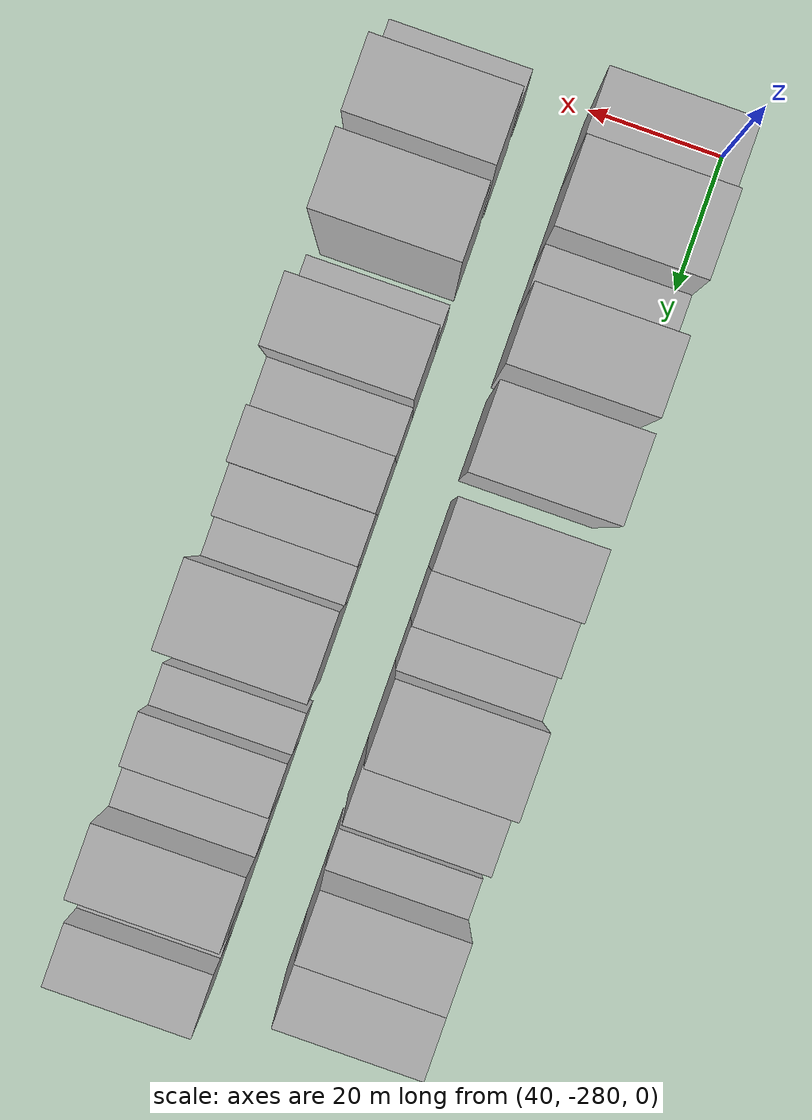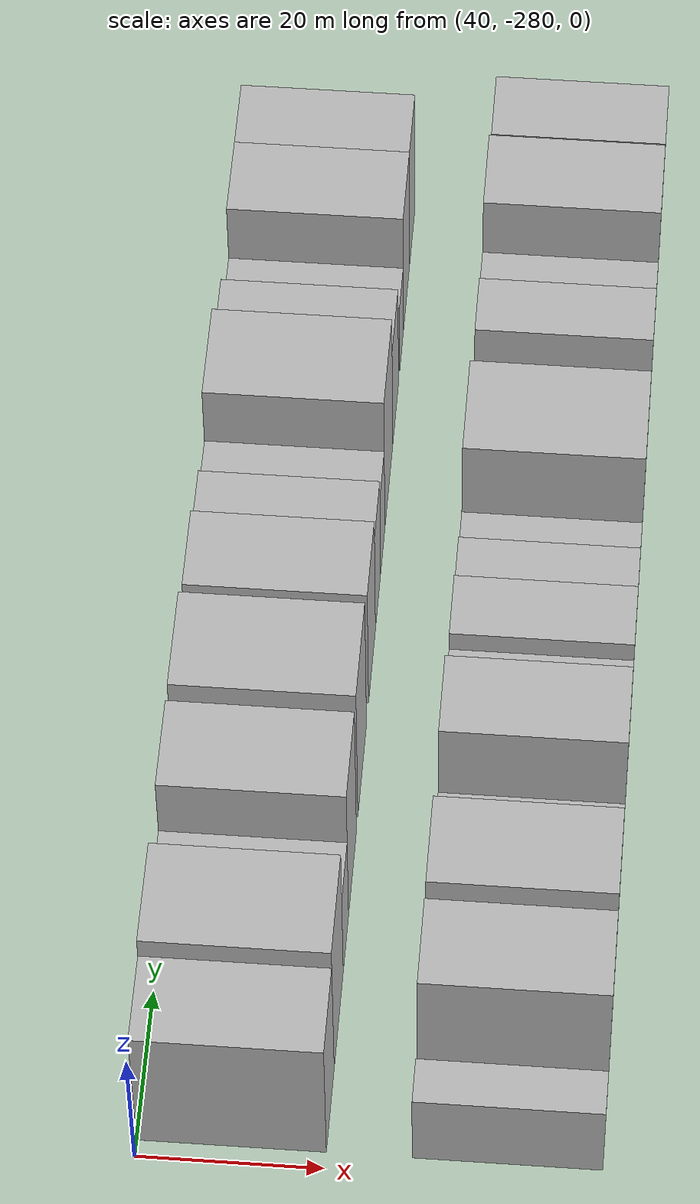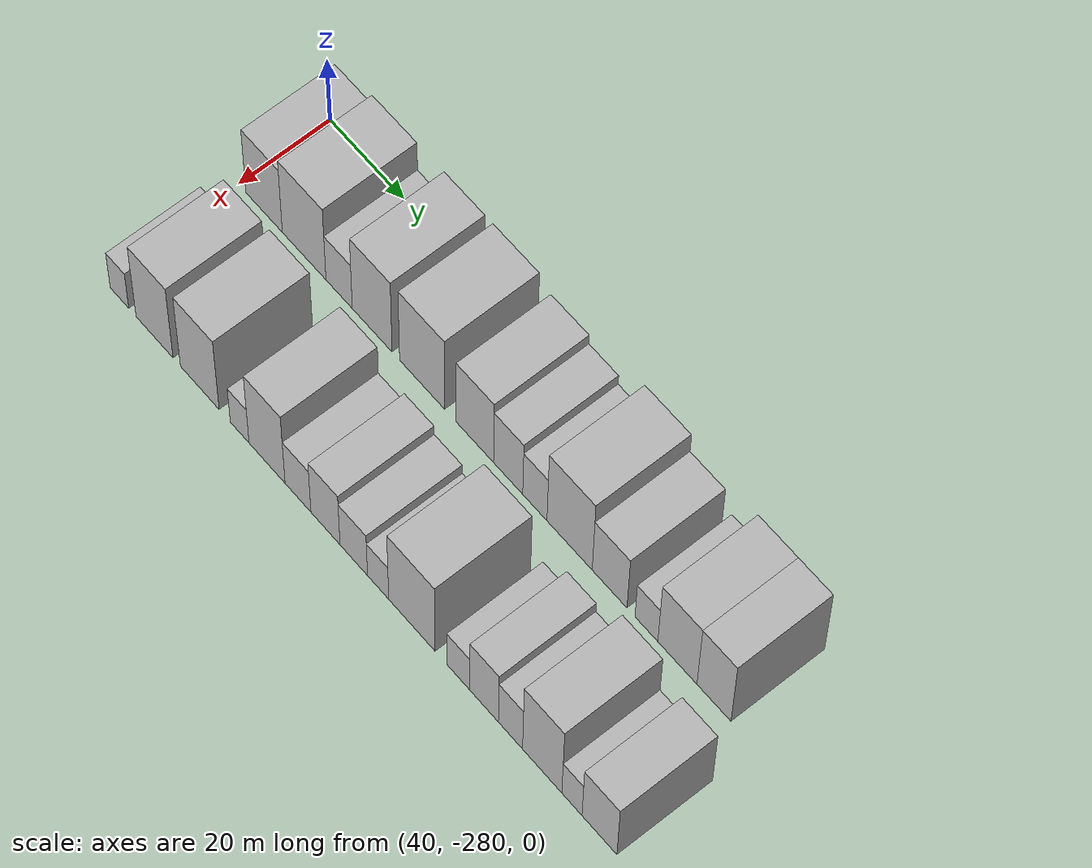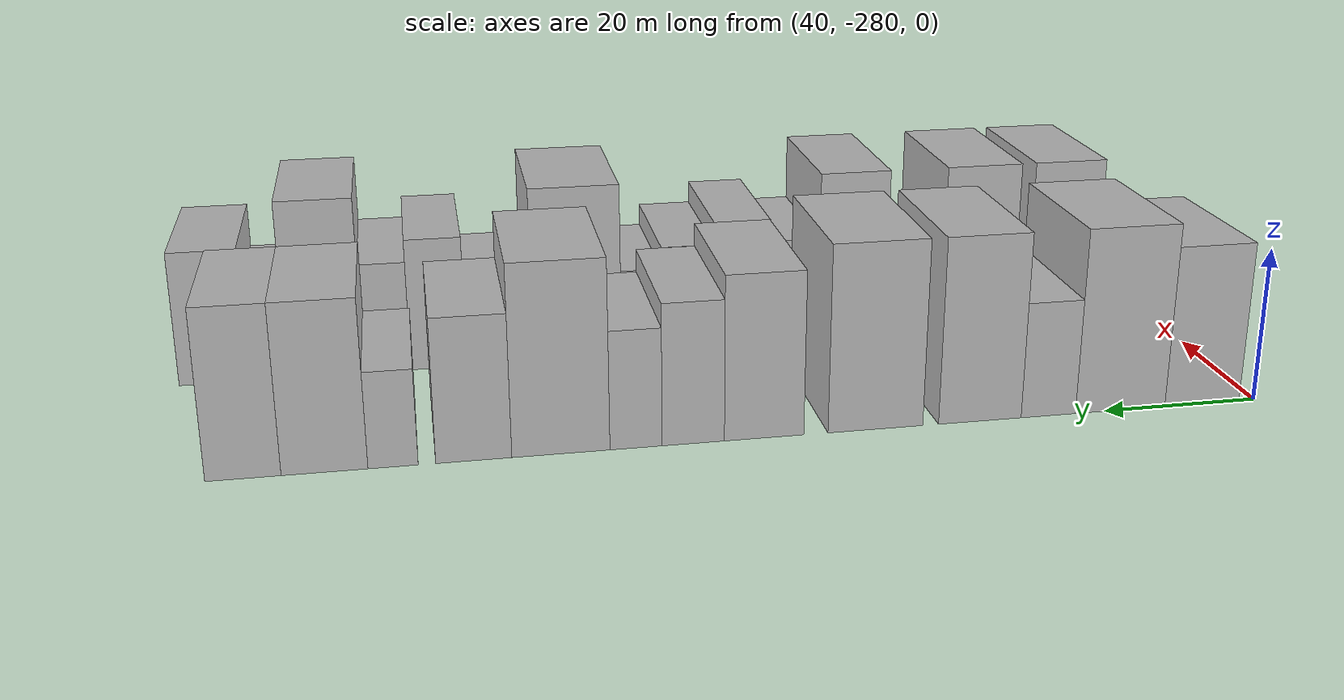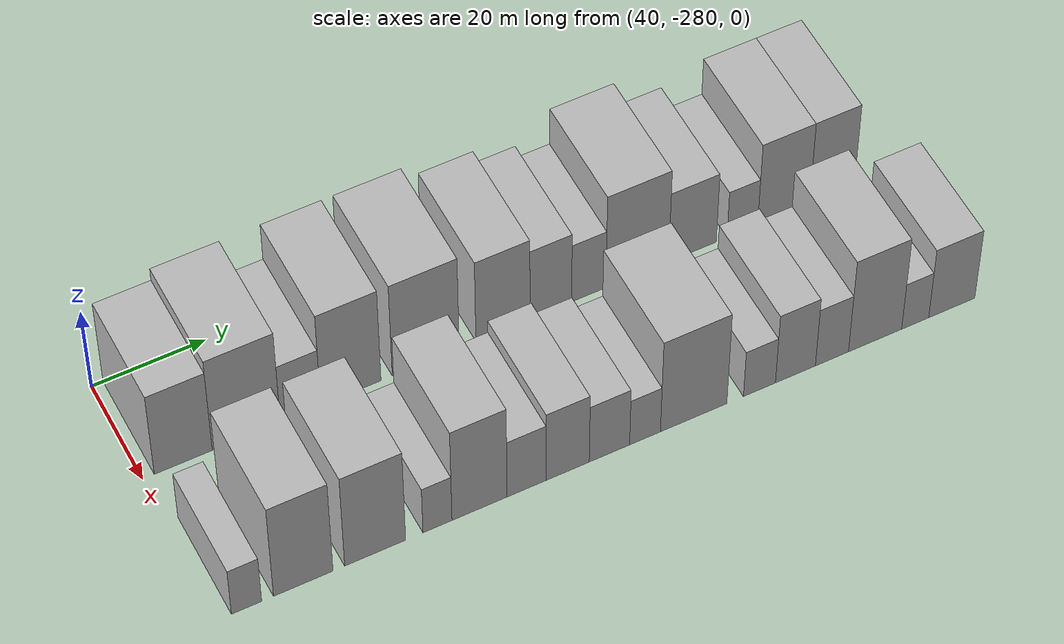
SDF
<sdf version="1.6">
 <world name="default">
  <model name="building_1">
   <static>1</static>
   <pose>50.0000 -272.9973 0 0.000000 0.000000 0.000000</pose>
   <link name="link">
    <pose>0 0 10.50 0 0 0</pose>
    <collision name="collision"><geometry><box><size>20.0000 10.0054 21.0000</size></box></geometry></collision>
    <visual name="visual">
     <cast_shadows>0</cast_shadows>
     <geometry><box><size>20.0000 10.0054 21.0000</size></box></geometry>
     <material>
      <script>
       <uri>model://HANNAS_wall/materials/scripts</uri>
       <uri>model://HANNAS_wall/materials/textures</uri>
       <name>vrc/HANNAS_wall</name>
      </script>
     </material>
    </visual>
   </link>
  </model>
  <model name="building_2">
   <static>1</static>
   <pose>50.0000 -262.0783 0 0.000000 0.000000 0.000000</pose>
   <link name="link">
    <pose>0 0 12.00 0 0 0</pose>
    <collision name="collision"><geometry><box><size>20.0000 11.8327 24.0000</size></box></geometry></collision>
    <visual name="visual">
     <cast_shadows>0</cast_shadows>
     <geometry><box><size>20.0000 11.8327 24.0000</size></box></geometry>
     <material>
      <script>
       <uri>model://HANNAS_wall/materials/scripts</uri>
       <uri>model://HANNAS_wall/materials/textures</uri>
       <name>vrc/HANNAS_wall</name>
      </script>
     </material>
    </visual>
   </link>
  </model>
  <model name="building_3">
   <static>1</static>
   <pose>50.0000 -252.6162 0 0.000000 0.000000 0.000000</pose>
   <link name="link">
    <pose>0 0 7.50 0 0 0</pose>
    <collision name="collision"><geometry><box><size>20.0000 7.0915 15.0000</size></box></geometry></collision>
    <visual name="visual">
     <cast_shadows>0</cast_shadows>
     <geometry><box><size>20.0000 7.0915 15.0000</size></box></geometry>
     <material>
      <script>
       <uri>model://HANNAS_wall/materials/scripts</uri>
       <uri>model://HANNAS_wall/materials/textures</uri>
       <name>vrc/HANNAS_wall</name>
      </script>
     </material>
    </visual>
   </link>
  </model>
  <model name="building_4">
   <static>1</static>
   <pose>50.0000 -243.7639 0 0.000000 0.000000 0.000000</pose>
   <link name="link">
    <pose>0 0 12.00 0 0 0</pose>
    <collision name="collision"><geometry><box><size>20.0000 10.6131 24.0000</size></box></geometry></collision>
    <visual name="visual">
     <cast_shadows>0</cast_shadows>
     <geometry><box><size>20.0000 10.6131 24.0000</size></box></geometry>
     <material>
      <script>
       <uri>model://HANNAS_wall/materials/scripts</uri>
       <uri>model://HANNAS_wall/materials/textures</uri>
       <name>vrc/HANNAS_wall</name>
      </script>
     </material>
    </visual>
   </link>
  </model>
  <model name="building_5">
   <static>1</static>
   <pose>50.0000 -230.4985 0 0.000000 0.000000 0.000000</pose>
   <link name="link">
    <pose>0 0 12.00 0 0 0</pose>
    <collision name="collision"><geometry><box><size>20.0000 11.9177 24.0000</size></box></geometry></collision>
    <visual name="visual">
     <cast_shadows>0</cast_shadows>
     <geometry><box><size>20.0000 11.9177 24.0000</size></box></geometry>
     <material>
      <script>
       <uri>model://HANNAS_wall/materials/scripts</uri>
       <uri>model://HANNAS_wall/materials/textures</uri>
       <name>vrc/HANNAS_wall</name>
      </script>
     </material>
    </visual>
   </link>
  </model>
  <model name="building_6">
   <static>1</static>
   <pose>50.0000 -216.6666 0 0.000000 0.000000 0.000000</pose>
   <link name="link">
    <pose>0 0 10.50 0 0 0</pose>
    <collision name="collision"><geometry><box><size>20.0000 9.7462 21.0000</size></box></geometry></collision>
    <visual name="visual">
     <cast_shadows>0</cast_shadows>
     <geometry><box><size>20.0000 9.7462 21.0000</size></box></geometry>
     <material>
      <script>
       <uri>model://HANNAS_wall/materials/scripts</uri>
       <uri>model://HANNAS_wall/materials/textures</uri>
       <name>vrc/HANNAS_wall</name>
      </script>
     </material>
    </visual>
   </link>
  </model>
  <model name="building_7">
   <static>1</static>
   <pose>50.0000 -208.0286 0 0.000000 0.000000 0.000000</pose>
   <link name="link">
    <pose>0 0 9.00 0 0 0</pose>
    <collision name="collision"><geometry><box><size>20.0000 7.5296 18.0000</size></box></geometry></collision>
    <visual name="visual">
     <cast_shadows>0</cast_shadows>
     <geometry><box><size>20.0000 7.5296 18.0000</size></box></geometry>
     <material>
      <script>
       <uri>model://HANNAS_wall/materials/scripts</uri>
       <uri>model://HANNAS_wall/materials/textures</uri>
       <name>vrc/HANNAS_wall</name>
      </script>
     </material>
    </visual>
   </link>
  </model>
  <model name="building_8">
   <static>1</static>
   <pose>50.0000 -201.1453 0 0.000000 0.000000 0.000000</pose>
   <link name="link">
    <pose>0 0 7.50 0 0 0</pose>
    <collision name="collision"><geometry><box><size>20.0000 6.2371 15.0000</size></box></geometry></collision>
    <visual name="visual">
     <cast_shadows>0</cast_shadows>
     <geometry><box><size>20.0000 6.2371 15.0000</size></box></geometry>
     <material>
      <script>
       <uri>model://HANNAS_wall/materials/scripts</uri>
       <uri>model://HANNAS_wall/materials/textures</uri>
       <name>vrc/HANNAS_wall</name>
      </script>
     </material>
    </visual>
   </link>
  </model>
  <model name="building_9">
   <static>1</static>
   <pose>50.0000 -192.2525 0 0.000000 0.000000 0.000000</pose>
   <link name="link">
    <pose>0 0 12.00 0 0 0</pose>
    <collision name="collision"><geometry><box><size>20.0000 11.5486 24.0000</size></box></geometry></collision>
    <visual name="visual">
     <cast_shadows>0</cast_shadows>
     <geometry><box><size>20.0000 11.5486 24.0000</size></box></geometry>
     <material>
      <script>
       <uri>model://HANNAS_wall/materials/scripts</uri>
       <uri>model://HANNAS_wall/materials/textures</uri>
       <name>vrc/HANNAS_wall</name>
      </script>
     </material>
    </visual>
   </link>
  </model>
  <model name="building_10">
   <static>1</static>
   <pose>50.0000 -182.0756 0 0.000000 0.000000 0.000000</pose>
   <link name="link">
    <pose>0 0 9.00 0 0 0</pose>
    <collision name="collision"><geometry><box><size>20.0000 8.8052 18.0000</size></box></geometry></collision>
    <visual name="visual">
     <cast_shadows>0</cast_shadows>
     <geometry><box><size>20.0000 8.8052 18.0000</size></box></geometry>
     <material>
      <script>
       <uri>model://HANNAS_wall/materials/scripts</uri>
       <uri>model://HANNAS_wall/materials/textures</uri>
       <name>vrc/HANNAS_wall</name>
      </script>
     </material>
    </visual>
   </link>
  </model>
  <model name="building_11">
   <static>1</static>
   <pose>50.0000 -172.8159 0 0.000000 0.000000 0.000000</pose>
   <link name="link">
    <pose>0 0 6.00 0 0 0</pose>
    <collision name="collision"><geometry><box><size>20.0000 5.7141 12.0000</size></box></geometry></collision>
    <visual name="visual">
     <cast_shadows>0</cast_shadows>
     <geometry><box><size>20.0000 5.7141 12.0000</size></box></geometry>
     <material>
      <script>
       <uri>model://HANNAS_wall/materials/scripts</uri>
       <uri>model://HANNAS_wall/materials/textures</uri>
       <name>vrc/HANNAS_wall</name>
      </script>
     </material>
    </visual>
   </link>
  </model>
  <model name="building_12">
   <static>1</static>
   <pose>50.0000 -165.0856 0 0.000000 0.000000 0.000000</pose>
   <link name="link">
    <pose>0 0 10.50 0 0 0</pose>
    <collision name="collision"><geometry><box><size>20.0000 9.7466 21.0000</size></box></geometry></collision>
    <visual name="visual">
     <cast_shadows>0</cast_shadows>
     <geometry><box><size>20.0000 9.7466 21.0000</size></box></geometry>
     <material>
      <script>
       <uri>model://HANNAS_wall/materials/scripts</uri>
       <uri>model://HANNAS_wall/materials/textures</uri>
       <name>vrc/HANNAS_wall</name>
      </script>
     </material>
    </visual>
   </link>
  </model>
  <model name="building_13">
   <static>1</static>
   <pose>50.0000 -156.0007 0 0.000000 0.000000 0.000000</pose>
   <link name="link">
    <pose>0 0 10.50 0 0 0</pose>
    <collision name="collision"><geometry><box><size>20.0000 8.4233 21.0000</size></box></geometry></collision>
    <visual name="visual">
     <cast_shadows>0</cast_shadows>
     <geometry><box><size>20.0000 8.4233 21.0000</size></box></geometry>
     <material>
      <script>
       <uri>model://HANNAS_wall/materials/scripts</uri>
       <uri>model://HANNAS_wall/materials/textures</uri>
       <name>vrc/HANNAS_wall</name>
      </script>
     </material>
    </visual>
   </link>
  </model>
  <model name="building_55">
   <static>1</static>
   <pose>79.0000 -275.4391 0 0.000000 0.000000 0.000000</pose>
   <link name="link">
    <pose>0 0 6.00 0 0 0</pose>
    <collision name="collision"><geometry><box><size>20.0000 5.1218 12.0000</size></box></geometry></collision>
    <visual name="visual">
     <cast_shadows>0</cast_shadows>
     <geometry><box><size>20.0000 5.1218 12.0000</size></box></geometry>
     <material>
      <script>
       <uri>model://HANNAS_wall/materials/scripts</uri>
       <uri>model://HANNAS_wall/materials/textures</uri>
       <name>vrc/HANNAS_wall</name>
      </script>
     </material>
    </visual>
   </link>
  </model>
  <model name="building_56">
   <static>1</static>
   <pose>79.0000 -265.8106 0 0.000000 0.000000 0.000000</pose>
   <link name="link">
    <pose>0 0 12.00 0 0 0</pose>
    <collision name="collision"><geometry><box><size>20.0000 10.1352 24.0000</size></box></geometry></collision>
    <visual name="visual">
     <cast_shadows>0</cast_shadows>
     <geometry><box><size>20.0000 10.1352 24.0000</size></box></geometry>
     <material>
      <script>
       <uri>model://HANNAS_wall/materials/scripts</uri>
       <uri>model://HANNAS_wall/materials/textures</uri>
       <name>vrc/HANNAS_wall</name>
      </script>
     </material>
    </visual>
   </link>
  </model>
  <model name="building_57">
   <static>1</static>
   <pose>79.0000 -253.4987 0 0.000000 0.000000 0.000000</pose>
   <link name="link">
    <pose>0 0 12.00 0 0 0</pose>
    <collision name="collision"><geometry><box><size>20.0000 10.4887 24.0000</size></box></geometry></collision>
    <visual name="visual">
     <cast_shadows>0</cast_shadows>
     <geometry><box><size>20.0000 10.4887 24.0000</size></box></geometry>
     <material>
      <script>
       <uri>model://HANNAS_wall/materials/scripts</uri>
       <uri>model://HANNAS_wall/materials/textures</uri>
       <name>vrc/HANNAS_wall</name>
      </script>
     </material>
    </visual>
   </link>
  </model>
  <model name="building_58">
   <static>1</static>
   <pose>79.0000 -242.7353 0 0.000000 0.000000 0.000000</pose>
   <link name="link">
    <pose>0 0 6.00 0 0 0</pose>
    <collision name="collision"><geometry><box><size>20.0000 5.0380 12.0000</size></box></geometry></collision>
    <visual name="visual">
     <cast_shadows>0</cast_shadows>
     <geometry><box><size>20.0000 5.0380 12.0000</size></box></geometry>
     <material>
      <script>
       <uri>model://HANNAS_wall/materials/scripts</uri>
       <uri>model://HANNAS_wall/materials/textures</uri>
       <name>vrc/HANNAS_wall</name>
      </script>
     </material>
    </visual>
   </link>
  </model>
  <model name="building_59">
   <static>1</static>
   <pose>79.0000 -235.4133 0 0.000000 0.000000 0.000000</pose>
   <link name="link">
    <pose>0 0 12.00 0 0 0</pose>
    <collision name="collision"><geometry><box><size>20.0000 9.6059 24.0000</size></box></geometry></collision>
    <visual name="visual">
     <cast_shadows>0</cast_shadows>
     <geometry><box><size>20.0000 9.6059 24.0000</size></box></geometry>
     <material>
      <script>
       <uri>model://HANNAS_wall/materials/scripts</uri>
       <uri>model://HANNAS_wall/materials/textures</uri>
       <name>vrc/HANNAS_wall</name>
      </script>
     </material>
    </visual>
   </link>
  </model>
  <model name="building_60">
   <static>1</static>
   <pose>79.0000 -227.1909 0 0.000000 0.000000 0.000000</pose>
   <link name="link">
    <pose>0 0 7.50 0 0 0</pose>
    <collision name="collision"><geometry><box><size>20.0000 6.8389 15.0000</size></box></geometry></collision>
    <visual name="visual">
     <cast_shadows>0</cast_shadows>
     <geometry><box><size>20.0000 6.8389 15.0000</size></box></geometry>
     <material>
      <script>
       <uri>model://HANNAS_wall/materials/scripts</uri>
       <uri>model://HANNAS_wall/materials/textures</uri>
       <name>vrc/HANNAS_wall</name>
      </script>
     </material>
    </visual>
   </link>
  </model>
  <model name="building_61">
   <static>1</static>
   <pose>79.0000 -219.9484 0 0.000000 0.000000 0.000000</pose>
   <link name="link">
    <pose>0 0 9.00 0 0 0</pose>
    <collision name="collision"><geometry><box><size>20.0000 7.6461 18.0000</size></box></geometry></collision>
    <visual name="visual">
     <cast_shadows>0</cast_shadows>
     <geometry><box><size>20.0000 7.6461 18.0000</size></box></geometry>
     <material>
      <script>
       <uri>model://HANNAS_wall/materials/scripts</uri>
       <uri>model://HANNAS_wall/materials/textures</uri>
       <name>vrc/HANNAS_wall</name>
      </script>
     </material>
    </visual>
   </link>
  </model>
  <model name="building_62">
   <static>1</static>
   <pose>79.0000 -212.5370 0 0.000000 0.000000 0.000000</pose>
   <link name="link">
    <pose>0 0 7.50 0 0 0</pose>
    <collision name="collision"><geometry><box><size>20.0000 7.1766 15.0000</size></box></geometry></collision>
    <visual name="visual">
     <cast_shadows>0</cast_shadows>
     <geometry><box><size>20.0000 7.1766 15.0000</size></box></geometry>
     <material>
      <script>
       <uri>model://HANNAS_wall/materials/scripts</uri>
       <uri>model://HANNAS_wall/materials/textures</uri>
       <name>vrc/HANNAS_wall</name>
      </script>
     </material>
    </visual>
   </link>
  </model>
  <model name="building_63">
   <static>1</static>
   <pose>79.0000 -206.1921 0 0.000000 0.000000 0.000000</pose>
   <link name="link">
    <pose>0 0 6.00 0 0 0</pose>
    <collision name="collision"><geometry><box><size>20.0000 5.5131 12.0000</size></box></geometry></collision>
    <visual name="visual">
     <cast_shadows>0</cast_shadows>
     <geometry><box><size>20.0000 5.5131 12.0000</size></box></geometry>
     <material>
      <script>
       <uri>model://HANNAS_wall/materials/scripts</uri>
       <uri>model://HANNAS_wall/materials/textures</uri>
       <name>vrc/HANNAS_wall</name>
      </script>
     </material>
    </visual>
   </link>
  </model>
  <model name="building_64">
   <static>1</static>
   <pose>79.0000 -197.4586 0 0.000000 0.000000 0.000000</pose>
   <link name="link">
    <pose>0 0 12.00 0 0 0</pose>
    <collision name="collision"><geometry><box><size>20.0000 11.9539 24.0000</size></box></geometry></collision>
    <visual name="visual">
     <cast_shadows>0</cast_shadows>
     <geometry><box><size>20.0000 11.9539 24.0000</size></box></geometry>
     <material>
      <script>
       <uri>model://HANNAS_wall/materials/scripts</uri>
       <uri>model://HANNAS_wall/materials/textures</uri>
       <name>vrc/HANNAS_wall</name>
      </script>
     </material>
    </visual>
   </link>
  </model>
  <model name="building_65">
   <static>1</static>
   <pose>79.0000 -185.5794 0 0.000000 0.000000 0.000000</pose>
   <link name="link">
    <pose>0 0 6.00 0 0 0</pose>
    <collision name="collision"><geometry><box><size>20.0000 5.8046 12.0000</size></box></geometry></collision>
    <visual name="visual">
     <cast_shadows>0</cast_shadows>
     <geometry><box><size>20.0000 5.8046 12.0000</size></box></geometry>
     <material>
      <script>
       <uri>model://HANNAS_wall/materials/scripts</uri>
       <uri>model://HANNAS_wall/materials/textures</uri>
       <name>vrc/HANNAS_wall</name>
      </script>
     </material>
    </visual>
   </link>
  </model>
  <model name="building_66">
   <static>1</static>
   <pose>79.0000 -179.0302 0 0.000000 0.000000 0.000000</pose>
   <link name="link">
    <pose>0 0 9.00 0 0 0</pose>
    <collision name="collision"><geometry><box><size>20.0000 7.2938 18.0000</size></box></geometry></collision>
    <visual name="visual">
     <cast_shadows>0</cast_shadows>
     <geometry><box><size>20.0000 7.2938 18.0000</size></box></geometry>
     <material>
      <script>
       <uri>model://HANNAS_wall/materials/scripts</uri>
       <uri>model://HANNAS_wall/materials/textures</uri>
       <name>vrc/HANNAS_wall</name>
      </script>
     </material>
    </visual>
   </link>
  </model>
  <model name="building_67">
   <static>1</static>
   <pose>79.0000 -172.3479 0 0.000000 0.000000 0.000000</pose>
   <link name="link">
    <pose>0 0 7.50 0 0 0</pose>
    <collision name="collision"><geometry><box><size>20.0000 6.0707 15.0000</size></box></geometry></collision>
    <visual name="visual">
     <cast_shadows>0</cast_shadows>
     <geometry><box><size>20.0000 6.0707 15.0000</size></box></geometry>
     <material>
      <script>
       <uri>model://HANNAS_wall/materials/scripts</uri>
       <uri>model://HANNAS_wall/materials/textures</uri>
       <name>vrc/HANNAS_wall</name>
      </script>
     </material>
    </visual>
   </link>
  </model>
  <model name="building_68">
   <static>1</static>
   <pose>79.0000 -164.4032 0 0.000000 0.000000 0.000000</pose>
   <link name="link">
    <pose>0 0 12.00 0 0 0</pose>
    <collision name="collision"><geometry><box><size>20.0000 9.8187 24.0000</size></box></geometry></collision>
    <visual name="visual">
     <cast_shadows>0</cast_shadows>
     <geometry><box><size>20.0000 9.8187 24.0000</size></box></geometry>
     <material>
      <script>
       <uri>model://HANNAS_wall/materials/scripts</uri>
       <uri>model://HANNAS_wall/materials/textures</uri>
       <name>vrc/HANNAS_wall</name>
      </script>
     </material>
    </visual>
   </link>
  </model>
  <model name="building_69">
   <static>1</static>
   <pose>79.0000 -156.9844 0 0.000000 0.000000 0.000000</pose>
   <link name="link">
    <pose>0 0 6.00 0 0 0</pose>
    <collision name="collision"><geometry><box><size>20.0000 5.0189 12.0000</size></box></geometry></collision>
    <visual name="visual">
     <cast_shadows>0</cast_shadows>
     <geometry><box><size>20.0000 5.0189 12.0000</size></box></geometry>
     <material>
      <script>
       <uri>model://HANNAS_wall/materials/scripts</uri>
       <uri>model://HANNAS_wall/materials/textures</uri>
       <name>vrc/HANNAS_wall</name>
      </script>
     </material>
    </visual>
   </link>
  </model>
  <model name="building_70">
   <static>1</static>
   <pose>79.0000 -150.1710 0 0.000000 0.000000 0.000000</pose>
   <link name="link">
    <pose>0 0 9.00 0 0 0</pose>
    <collision name="collision"><geometry><box><size>20.0000 8.6078 18.0000</size></box></geometry></collision>
    <visual name="visual">
     <cast_shadows>0</cast_shadows>
     <geometry><box><size>20.0000 8.6078 18.0000</size></box></geometry>
     <material>
      <script>
       <uri>model://HANNAS_wall/materials/scripts</uri>
       <uri>model://HANNAS_wall/materials/textures</uri>
       <name>vrc/HANNAS_wall</name>
      </script>
     </material>
    </visual>
   </link>
  </model>
 </world>
</sdf>
